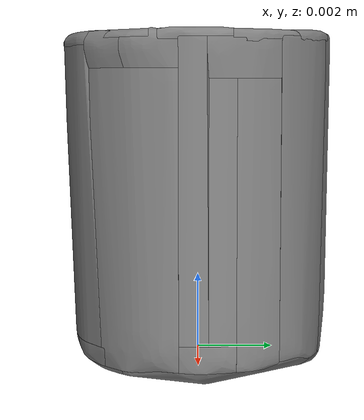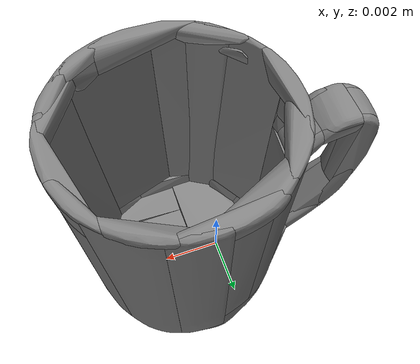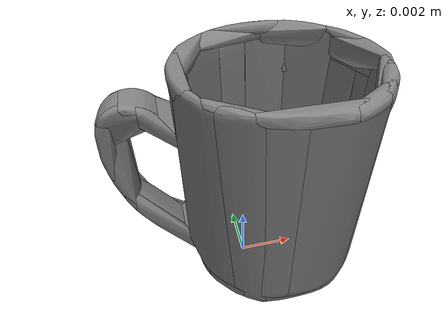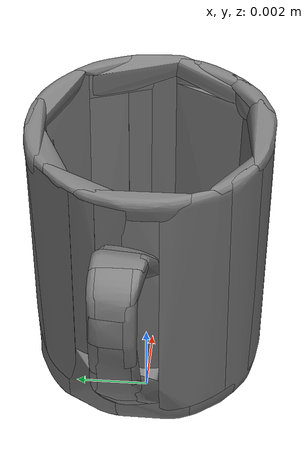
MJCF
<?xml version="1.0" ?>
<mujoco model="039_mug_1">
  <asset>
    <mesh name="039_mug_1_mesh" file="039_mug_1.stl" scale="0.08 0.08 0.08"/>
    <mesh name="039_mug_1_part_0" file="decomposed/039_mug_1_decomposed_0.stl" scale="0.08 0.08 0.08"/>
    <mesh name="039_mug_1_part_1" file="decomposed/039_mug_1_decomposed_1.stl" scale="0.08 0.08 0.08"/>
    <mesh name="039_mug_1_part_2" file="decomposed/039_mug_1_decomposed_2.stl" scale="0.08 0.08 0.08"/>
    <mesh name="039_mug_1_part_3" file="decomposed/039_mug_1_decomposed_3.stl" scale="0.08 0.08 0.08"/>
    <mesh name="039_mug_1_part_4" file="decomposed/039_mug_1_decomposed_4.stl" scale="0.08 0.08 0.08"/>
    <mesh name="039_mug_1_part_5" file="decomposed/039_mug_1_decomposed_5.stl" scale="0.08 0.08 0.08"/>
    <mesh name="039_mug_1_part_6" file="decomposed/039_mug_1_decomposed_6.stl" scale="0.08 0.08 0.08"/>
    <mesh name="039_mug_1_part_7" file="decomposed/039_mug_1_decomposed_7.stl" scale="0.08 0.08 0.08"/>
    <mesh name="039_mug_1_part_8" file="decomposed/039_mug_1_decomposed_8.stl" scale="0.08 0.08 0.08"/>
    <mesh name="039_mug_1_part_9" file="decomposed/039_mug_1_decomposed_9.stl" scale="0.08 0.08 0.08"/>
    <mesh name="039_mug_1_part_10" file="decomposed/039_mug_1_decomposed_10.stl" scale="0.08 0.08 0.08"/>
    <mesh name="039_mug_1_part_11" file="decomposed/039_mug_1_decomposed_11.stl" scale="0.08 0.08 0.08"/>
    <mesh name="039_mug_1_part_12" file="decomposed/039_mug_1_decomposed_12.stl" scale="0.08 0.08 0.08"/>
    <mesh name="039_mug_1_part_13" file="decomposed/039_mug_1_decomposed_13.stl" scale="0.08 0.08 0.08"/>
    <mesh name="039_mug_1_part_14" file="decomposed/039_mug_1_decomposed_14.stl" scale="0.08 0.08 0.08"/>
    <mesh name="039_mug_1_part_15" file="decomposed/039_mug_1_decomposed_15.stl" scale="0.08 0.08 0.08"/>
    <mesh name="039_mug_1_part_16" file="decomposed/039_mug_1_decomposed_16.stl" scale="0.08 0.08 0.08"/>
    <mesh name="039_mug_1_part_17" file="decomposed/039_mug_1_decomposed_17.stl" scale="0.08 0.08 0.08"/>
    <mesh name="039_mug_1_part_18" file="decomposed/039_mug_1_decomposed_18.stl" scale="0.08 0.08 0.08"/>
    <mesh name="039_mug_1_part_19" file="decomposed/039_mug_1_decomposed_19.stl" scale="0.08 0.08 0.08"/>
    <mesh name="039_mug_1_part_20" file="decomposed/039_mug_1_decomposed_20.stl" scale="0.08 0.08 0.08"/>
    <mesh name="039_mug_1_part_21" file="decomposed/039_mug_1_decomposed_21.stl" scale="0.08 0.08 0.08"/>
    <mesh name="039_mug_1_part_22" file="decomposed/039_mug_1_decomposed_22.stl" scale="0.08 0.08 0.08"/>
    <mesh name="039_mug_1_part_23" file="decomposed/039_mug_1_decomposed_23.stl" scale="0.08 0.08 0.08"/>
    <mesh name="039_mug_1_part_24" file="decomposed/039_mug_1_decomposed_24.stl" scale="0.08 0.08 0.08"/>
    <mesh name="039_mug_1_part_25" file="decomposed/039_mug_1_decomposed_25.stl" scale="0.08 0.08 0.08"/>
    <mesh name="039_mug_1_part_26" file="decomposed/039_mug_1_decomposed_26.stl" scale="0.08 0.08 0.08"/>
    <mesh name="039_mug_1_part_27" file="decomposed/039_mug_1_decomposed_27.stl" scale="0.08 0.08 0.08"/>
    <mesh name="039_mug_1_part_28" file="decomposed/039_mug_1_decomposed_28.stl" scale="0.08 0.08 0.08"/>
    <mesh name="039_mug_1_part_29" file="decomposed/039_mug_1_decomposed_29.stl" scale="0.08 0.08 0.08"/>
    <mesh name="039_mug_1_part_30" file="decomposed/039_mug_1_decomposed_30.stl" scale="0.08 0.08 0.08"/>
    <mesh name="039_mug_1_part_31" file="decomposed/039_mug_1_decomposed_31.stl" scale="0.08 0.08 0.08"/>
    <mesh name="039_mug_1_part_32" file="decomposed/039_mug_1_decomposed_32.stl" scale="0.08 0.08 0.08"/>
    <mesh name="039_mug_1_part_33" file="decomposed/039_mug_1_decomposed_33.stl" scale="0.08 0.08 0.08"/>
    <mesh name="039_mug_1_part_34" file="decomposed/039_mug_1_decomposed_34.stl" scale="0.08 0.08 0.08"/>
    <mesh name="039_mug_1_part_35" file="decomposed/039_mug_1_decomposed_35.stl" scale="0.08 0.08 0.08"/>
    <mesh name="039_mug_1_part_36" file="decomposed/039_mug_1_decomposed_36.stl" scale="0.08 0.08 0.08"/>
    <mesh name="039_mug_1_part_37" file="decomposed/039_mug_1_decomposed_37.stl" scale="0.08 0.08 0.08"/>
    <mesh name="039_mug_1_part_38" file="decomposed/039_mug_1_decomposed_38.stl" scale="0.08 0.08 0.08"/>
    <mesh name="039_mug_1_part_39" file="decomposed/039_mug_1_decomposed_39.stl" scale="0.08 0.08 0.08"/>
    <mesh name="039_mug_1_part_40" file="decomposed/039_mug_1_decomposed_40.stl" scale="0.08 0.08 0.08"/>
    <mesh name="039_mug_1_part_41" file="decomposed/039_mug_1_decomposed_41.stl" scale="0.08 0.08 0.08"/>
    <mesh name="039_mug_1_part_42" file="decomposed/039_mug_1_decomposed_42.stl" scale="0.08 0.08 0.08"/>
    <mesh name="039_mug_1_part_43" file="decomposed/039_mug_1_decomposed_43.stl" scale="0.08 0.08 0.08"/>
    <mesh name="039_mug_1_part_44" file="decomposed/039_mug_1_decomposed_44.stl" scale="0.08 0.08 0.08"/>
    <mesh name="039_mug_1_part_45" file="decomposed/039_mug_1_decomposed_45.stl" scale="0.08 0.08 0.08"/>
    <mesh name="039_mug_1_part_46" file="decomposed/039_mug_1_decomposed_46.stl" scale="0.08 0.08 0.08"/>
    <mesh name="039_mug_1_part_47" file="decomposed/039_mug_1_decomposed_47.stl" scale="0.08 0.08 0.08"/>
    <mesh name="039_mug_1_part_48" file="decomposed/039_mug_1_decomposed_48.stl" scale="0.08 0.08 0.08"/>
    <mesh name="039_mug_1_part_49" file="decomposed/039_mug_1_decomposed_49.stl" scale="0.08 0.08 0.08"/>
    <mesh name="039_mug_1_part_50" file="decomposed/039_mug_1_decomposed_50.stl" scale="0.08 0.08 0.08"/>
    <mesh name="039_mug_1_part_51" file="decomposed/039_mug_1_decomposed_51.stl" scale="0.08 0.08 0.08"/>
    <mesh name="039_mug_1_part_52" file="decomposed/039_mug_1_decomposed_52.stl" scale="0.08 0.08 0.08"/>
    <mesh name="039_mug_1_part_53" file="decomposed/039_mug_1_decomposed_53.stl" scale="0.08 0.08 0.08"/>
    <mesh name="039_mug_1_part_54" file="decomposed/039_mug_1_decomposed_54.stl" scale="0.08 0.08 0.08"/>
    <mesh name="039_mug_1_part_55" file="decomposed/039_mug_1_decomposed_55.stl" scale="0.08 0.08 0.08"/>
    <mesh name="039_mug_1_part_56" file="decomposed/039_mug_1_decomposed_56.stl" scale="0.08 0.08 0.08"/>
    <mesh name="039_mug_1_part_57" file="decomposed/039_mug_1_decomposed_57.stl" scale="0.08 0.08 0.08"/>
    <mesh name="039_mug_1_part_58" file="decomposed/039_mug_1_decomposed_58.stl" scale="0.08 0.08 0.08"/>
    <mesh name="039_mug_1_part_59" file="decomposed/039_mug_1_decomposed_59.stl" scale="0.08 0.08 0.08"/>
    <mesh name="039_mug_1_part_60" file="decomposed/039_mug_1_decomposed_60.stl" scale="0.08 0.08 0.08"/>
    <mesh name="039_mug_1_part_61" file="decomposed/039_mug_1_decomposed_61.stl" scale="0.08 0.08 0.08"/>
    <mesh name="039_mug_1_part_62" file="decomposed/039_mug_1_decomposed_62.stl" scale="0.08 0.08 0.08"/>
    <mesh name="039_mug_1_part_63" file="decomposed/039_mug_1_decomposed_63.stl" scale="0.08 0.08 0.08"/>
  </asset>
  <worldbody>
    <body name="039_mug_1">
      <geom name="039_mug_1_geom_0" type="mesh" mesh="039_mug_1_part_0"/>
      <geom name="039_mug_1_geom_1" type="mesh" mesh="039_mug_1_part_1"/>
      <geom name="039_mug_1_geom_2" type="mesh" mesh="039_mug_1_part_2"/>
      <geom name="039_mug_1_geom_3" type="mesh" mesh="039_mug_1_part_3"/>
      <geom name="039_mug_1_geom_4" type="mesh" mesh="039_mug_1_part_4"/>
      <geom name="039_mug_1_geom_5" type="mesh" mesh="039_mug_1_part_5"/>
      <geom name="039_mug_1_geom_6" type="mesh" mesh="039_mug_1_part_6"/>
      <geom name="039_mug_1_geom_7" type="mesh" mesh="039_mug_1_part_7"/>
      <geom name="039_mug_1_geom_8" type="mesh" mesh="039_mug_1_part_8"/>
      <geom name="039_mug_1_geom_9" type="mesh" mesh="039_mug_1_part_9"/>
      <geom name="039_mug_1_geom_10" type="mesh" mesh="039_mug_1_part_10"/>
      <geom name="039_mug_1_geom_11" type="mesh" mesh="039_mug_1_part_11"/>
      <geom name="039_mug_1_geom_12" type="mesh" mesh="039_mug_1_part_12"/>
      <geom name="039_mug_1_geom_13" type="mesh" mesh="039_mug_1_part_13"/>
      <geom name="039_mug_1_geom_14" type="mesh" mesh="039_mug_1_part_14"/>
      <geom name="039_mug_1_geom_15" type="mesh" mesh="039_mug_1_part_15"/>
      <geom name="039_mug_1_geom_16" type="mesh" mesh="039_mug_1_part_16"/>
      <geom name="039_mug_1_geom_17" type="mesh" mesh="039_mug_1_part_17"/>
      <geom name="039_mug_1_geom_18" type="mesh" mesh="039_mug_1_part_18"/>
      <geom name="039_mug_1_geom_19" type="mesh" mesh="039_mug_1_part_19"/>
      <geom name="039_mug_1_geom_20" type="mesh" mesh="039_mug_1_part_20"/>
      <geom name="039_mug_1_geom_21" type="mesh" mesh="039_mug_1_part_21"/>
      <geom name="039_mug_1_geom_22" type="mesh" mesh="039_mug_1_part_22"/>
      <geom name="039_mug_1_geom_23" type="mesh" mesh="039_mug_1_part_23"/>
      <geom name="039_mug_1_geom_24" type="mesh" mesh="039_mug_1_part_24"/>
      <geom name="039_mug_1_geom_25" type="mesh" mesh="039_mug_1_part_25"/>
      <geom name="039_mug_1_geom_26" type="mesh" mesh="039_mug_1_part_26"/>
      <geom name="039_mug_1_geom_27" type="mesh" mesh="039_mug_1_part_27"/>
      <geom name="039_mug_1_geom_28" type="mesh" mesh="039_mug_1_part_28"/>
      <geom name="039_mug_1_geom_29" type="mesh" mesh="039_mug_1_part_29"/>
      <geom name="039_mug_1_geom_30" type="mesh" mesh="039_mug_1_part_30"/>
      <geom name="039_mug_1_geom_31" type="mesh" mesh="039_mug_1_part_31"/>
      <geom name="039_mug_1_geom_32" type="mesh" mesh="039_mug_1_part_32"/>
      <geom name="039_mug_1_geom_33" type="mesh" mesh="039_mug_1_part_33"/>
      <geom name="039_mug_1_geom_34" type="mesh" mesh="039_mug_1_part_34"/>
      <geom name="039_mug_1_geom_35" type="mesh" mesh="039_mug_1_part_35"/>
      <geom name="039_mug_1_geom_36" type="mesh" mesh="039_mug_1_part_36"/>
      <geom name="039_mug_1_geom_37" type="mesh" mesh="039_mug_1_part_37"/>
      <geom name="039_mug_1_geom_38" type="mesh" mesh="039_mug_1_part_38"/>
      <geom name="039_mug_1_geom_39" type="mesh" mesh="039_mug_1_part_39"/>
      <geom name="039_mug_1_geom_40" type="mesh" mesh="039_mug_1_part_40"/>
      <geom name="039_mug_1_geom_41" type="mesh" mesh="039_mug_1_part_41"/>
      <geom name="039_mug_1_geom_42" type="mesh" mesh="039_mug_1_part_42"/>
      <geom name="039_mug_1_geom_43" type="mesh" mesh="039_mug_1_part_43"/>
      <geom name="039_mug_1_geom_44" type="mesh" mesh="039_mug_1_part_44"/>
      <geom name="039_mug_1_geom_45" type="mesh" mesh="039_mug_1_part_45"/>
      <geom name="039_mug_1_geom_46" type="mesh" mesh="039_mug_1_part_46"/>
      <geom name="039_mug_1_geom_47" type="mesh" mesh="039_mug_1_part_47"/>
      <geom name="039_mug_1_geom_48" type="mesh" mesh="039_mug_1_part_48"/>
      <geom name="039_mug_1_geom_49" type="mesh" mesh="039_mug_1_part_49"/>
      <geom name="039_mug_1_geom_50" type="mesh" mesh="039_mug_1_part_50"/>
      <geom name="039_mug_1_geom_51" type="mesh" mesh="039_mug_1_part_51"/>
      <geom name="039_mug_1_geom_52" type="mesh" mesh="039_mug_1_part_52"/>
      <geom name="039_mug_1_geom_53" type="mesh" mesh="039_mug_1_part_53"/>
      <geom name="039_mug_1_geom_54" type="mesh" mesh="039_mug_1_part_54"/>
      <geom name="039_mug_1_geom_55" type="mesh" mesh="039_mug_1_part_55"/>
      <geom name="039_mug_1_geom_56" type="mesh" mesh="039_mug_1_part_56"/>
      <geom name="039_mug_1_geom_57" type="mesh" mesh="039_mug_1_part_57"/>
      <geom name="039_mug_1_geom_58" type="mesh" mesh="039_mug_1_part_58"/>
      <geom name="039_mug_1_geom_59" type="mesh" mesh="039_mug_1_part_59"/>
      <geom name="039_mug_1_geom_60" type="mesh" mesh="039_mug_1_part_60"/>
      <geom name="039_mug_1_geom_61" type="mesh" mesh="039_mug_1_part_61"/>
      <geom name="039_mug_1_geom_62" type="mesh" mesh="039_mug_1_part_62"/>
      <geom name="039_mug_1_geom_63" type="mesh" mesh="039_mug_1_part_63"/>
    </body>
  </worldbody>
</mujoco>
